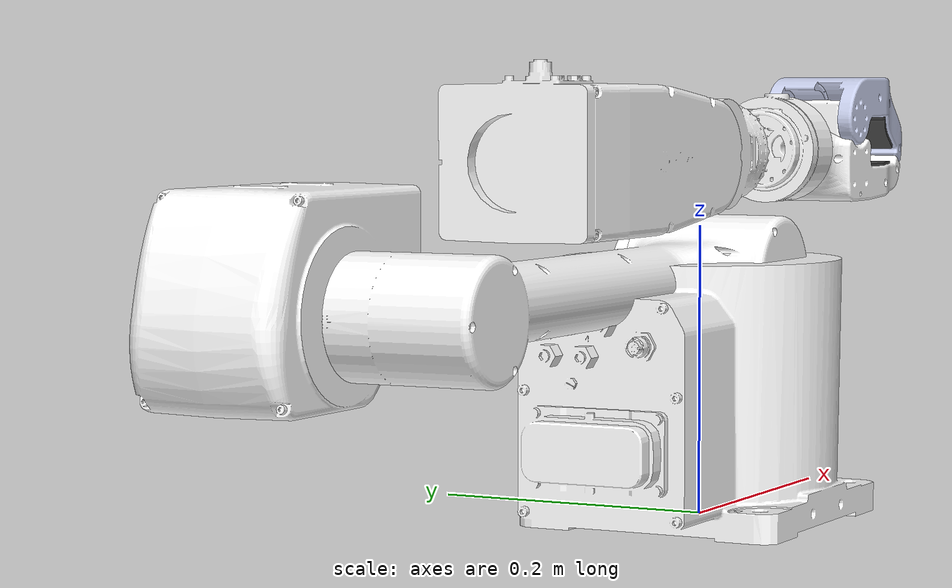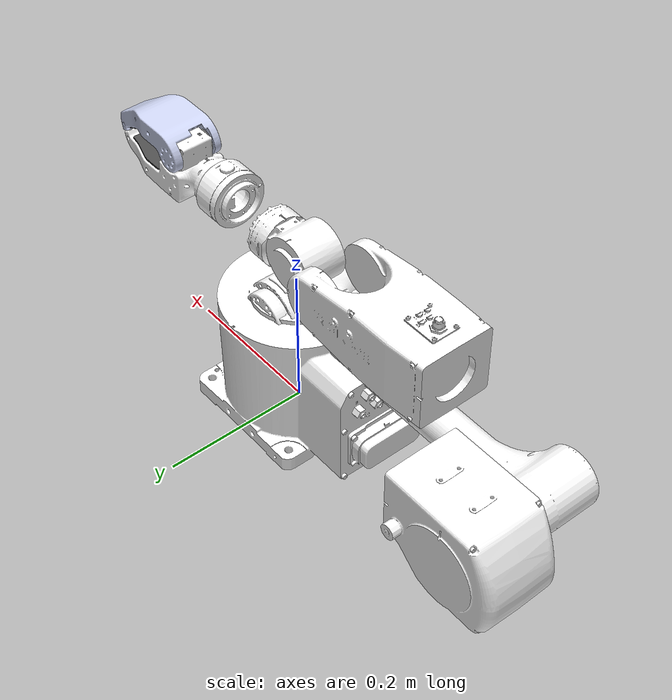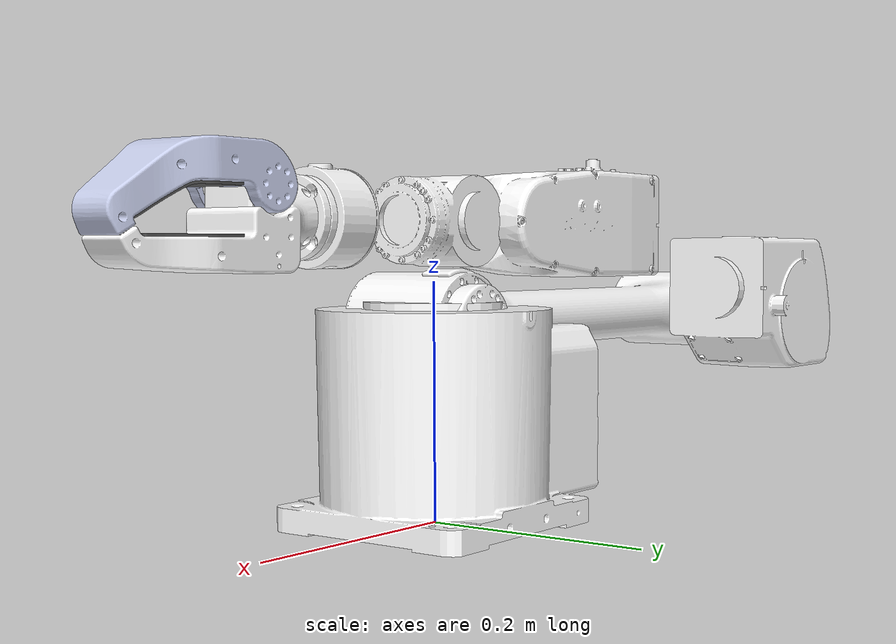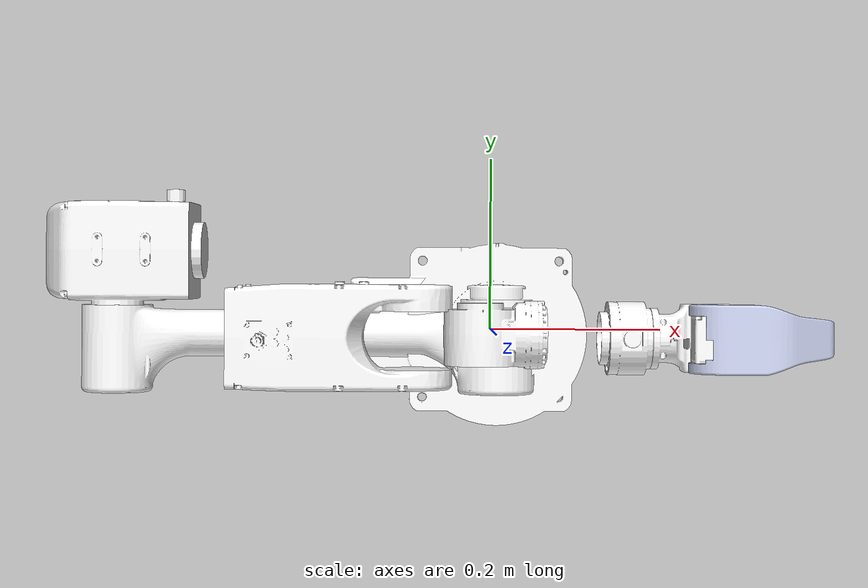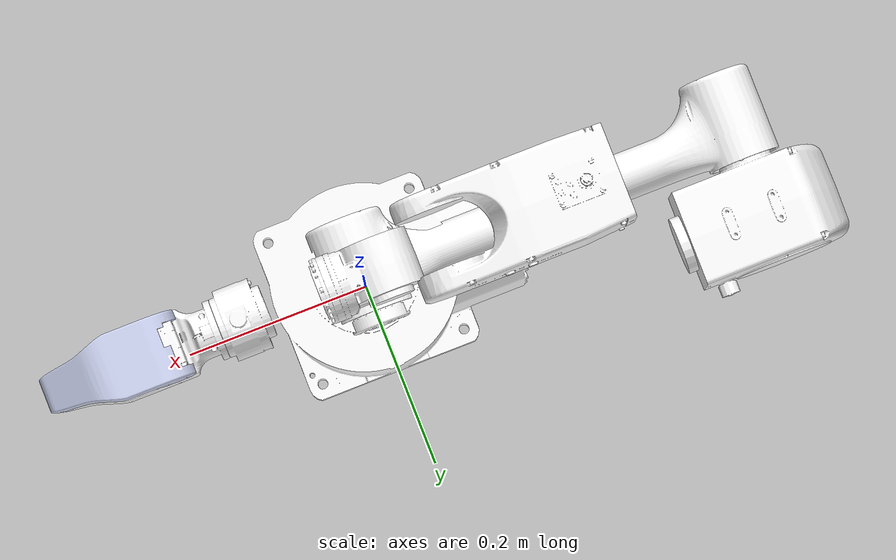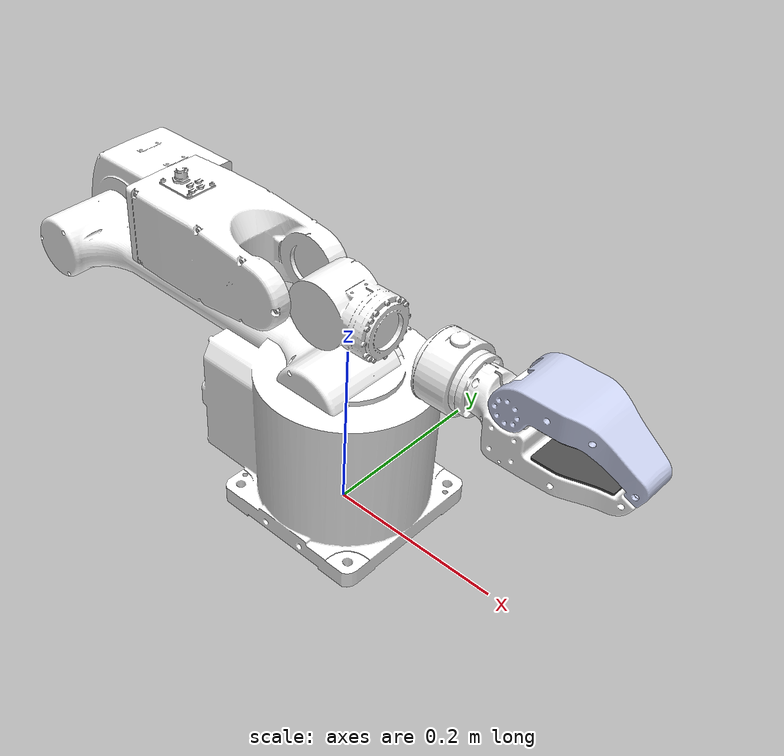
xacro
<?xml version="1.0"?>

<robot xmlns:xacro="http://www.ros.org/wiki/xacro" name="qa01" >

  <xacro:arg name="debug" default="false" />

  <xacro:include filename="$(find qa01)/xacro/gazebo.xacro" />
  <xacro:include filename="$(find qa01)/xacro/robot_description.xacro" />
  <xacro:include filename="$(find qa01)/xacro/ros2_control.xacro" />

  <xacro:qa01_ros2_control/>
  <xacro:qa01_description debug="$(arg debug)"/>

</robot>

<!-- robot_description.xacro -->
<robot xmlns:xacro="http://www.ros.org/wiki/xacro">
  <xacro:macro name="qa01_description" params="debug">

    <link name="world" />
    <joint name="world_fixed" type="fixed">
      <parent link="world" />
      <child link="base_link" />
    </joint>

  <link
    name="base_link">
    <inertial>
      <origin
        xyz="0.00039738 -0.00005889 0.06018277"
        rpy="0 0 0" />
      <mass
        value="1.235" />
      <inertia
        ixx="0.00151953"
        ixy="0.00000173"
        ixz="-0.00001964"
        iyy="0.00146074"
        iyz="0.00000259"
        izz="0.00110167" />
    </inertial>
    <visual>
      <origin
        xyz="0 0 0"
        rpy="0 0 0" />
      <geometry>
        <mesh
          filename="/home/wl/Documents/simulation_all_ros2/src/robot_description/qa01/meshes/base_link.STL" />
      </geometry>
      <material
        name="">
        <color
          rgba="1 1 1 1" />
      </material>
    </visual>
    <collision>
      <origin
        xyz="0 0 0"
        rpy="0 0 0" />
      <geometry>
        <mesh
          filename="/home/wl/Documents/simulation_all_ros2/src/robot_description/qa01/meshes/base_link.STL" />
      </geometry>
    </collision>
  </link>

  <joint
    name="Joint1"
    type="revolute">
    <origin
      xyz="0 0 0.107"
      rpy="0 0 0" />
    <parent
      link="base_link" />
    <child
      link="Link1" />
    <axis
      xyz="0 0 1" />
    <limit
      lower="-2.2"
      upper="3.0"
      effort="20"
      velocity="1.57" />
  </joint>

  <link
    name="Link1">
    <inertial>
      <origin
        xyz="0.00002637 0.03034462 0.02957486"
        rpy="0 0 0" />
      <mass
        value="0.256" />
      <inertia
        ixx="0.00034307"
        ixy="-0.00000043"
        ixz="-0.00000019"
        iyy="0.00031904"
        iyz="0.00009123"
        izz="0.00031265" />
    </inertial>
    <visual>
      <origin
        xyz="0 0 0"
        rpy="0 0 0" />
      <geometry>
        <mesh
          filename="/home/wl/Documents/simulation_all_ros2/src/robot_description/qa01/meshes/Link1.STL" />
      </geometry>
      <material
        name="">
        <color
          rgba="1 1 1 1" />
      </material>
    </visual>
    <collision>
      <origin
        xyz="0 0 0"
        rpy="0 0 0" />
      <geometry>
        <mesh
          filename="/home/wl/Documents/simulation_all_ros2/src/robot_description/qa01/meshes/Link1.STL" />
      </geometry>
    </collision>
  </link>

  <joint
    name="Joint2"
    type="revolute">
    <origin
      xyz="0 0.041 0.058"
      rpy="0 0 0" />
    <parent
      link="Link1" />
    <child
      link="Link2" />
    <axis
      xyz="0 1 0" />
    <limit
      lower="0"
      upper="3.0"
      effort="20"
      velocity="1.57" />
  </joint>

  <link
    name="Link2">
    <inertial>
      <origin
        xyz="-0.18055472 -0.04510178 0.00003829"
        rpy="0 0 0" />
      <mass
        value="2.968" />
      <inertia
        ixx="0.00266709"
        ixy="0.00180103"
        ixz="0.00003559"
        iyy="0.1109826"
        iyz="0.0000056"
        izz="0.11142386" />
    </inertial>
    <visual>
      <origin
        xyz="0 0 0"
        rpy="0 0 0" />
      <geometry>
        <mesh
          filename="/home/wl/Documents/simulation_all_ros2/src/robot_description/qa01/meshes/Link2.STL" />
      </geometry>
      <material
        name="">
        <color
          rgba="1 1 1 1" />
      </material>
    </visual>
    <collision>
      <origin
        xyz="0 0 0"
        rpy="0 0 0" />
      <geometry>
        <mesh
          filename="/home/wl/Documents/simulation_all_ros2/src/robot_description/qa01/meshes/Link2.STL" />
      </geometry>
    </collision>
  </link>

  <joint
    name="Joint3"
    type="revolute">
    <origin
      xyz="-0.41 -0.0095 0"
      rpy="0 0 0" />
    <parent
      link="Link2" />
    <child
      link="Link3" />
    <axis
      xyz="0 1 0" />
    <limit
      lower="-3.0"
      upper="0"
      effort="20"
      velocity="1.57" />
  </joint>

  <link
    name="Link3">
    <inertial>
      <origin
        xyz="0.08202737 -0.02788467 0.07516671"
        rpy="0 0 0" />
      <mass
        value="1.356" />
      <inertia
        ixx="0.00204921"
        ixy="-0.00040930"
        ixz="0.00107577"
        iyy="0.00395056"
        iyz="-0.00037046"
        izz="0.00335315" />
    </inertial>
    <visual>
      <origin
        xyz="0 0 0"
        rpy="0 0 0" />
      <geometry>
        <mesh
          filename="/home/wl/Documents/simulation_all_ros2/src/robot_description/qa01/meshes/Link3.STL" />
      </geometry>
      <material
        name="">
        <color
          rgba="1 1 1 1" />
      </material>
    </visual>
    <collision>
      <origin
        xyz="0 0 0"
        rpy="0 0 0" />
      <geometry>
        <mesh
          filename="/home/wl/Documents/simulation_all_ros2/src/robot_description/qa01/meshes/Link3.STL" />
      </geometry>
    </collision>
  </link>

  <joint
    name="Joint4"
    type="revolute">
    <origin
      xyz="0.1415 -0.0315 0.085"
      rpy="0 0 0" />
    <parent
      link="Link3" />
    <child
      link="Link4" />
    <axis
      xyz="1 0 0" />
    <limit
      lower="-2.2"
      upper="3.0"
      effort="20"
      velocity="1.57" />
  </joint>

  <link
    name="Link4">
    <inertial>
      <origin
        xyz="0.20592565 -0.00384981 0.00001806"
        rpy="0 0 0" />
      <mass
        value="1.462" />
      <inertia
        ixx="0.0011947"
        ixy="-0.00025098"
        ixz="0.00000122"
        iyy="0.01082010"
        iyz="-0.00000088"
        izz="0.01098098" />
    </inertial>
    <visual>
      <origin
        xyz="0 0 0"
        rpy="0 0 0" />
      <geometry>
        <mesh
          filename="/home/wl/Documents/simulation_all_ros2/src/robot_description/qa01/meshes/Link4.STL" />
      </geometry>
      <material
        name="">
        <color
          rgba="1 1 1 1" />
      </material>
    </visual>
    <collision>
      <origin
        xyz="0 0 0"
        rpy="0 0 0" />
      <geometry>
        <mesh
          filename="/home/wl/Documents/simulation_all_ros2/src/robot_description/qa01/meshes/Link4.STL" />
      </geometry>
    </collision>
  </link>

  <joint
    name="Joint5"
    type="revolute">
    <origin
      xyz="0.2495 0.0355 0"
      rpy="0 0 0" />
    <parent
      link="Link4" />
    <child
      link="Link5" />
    <axis
      xyz="0 1 0" />
    <limit
      lower="-1.55"
      upper="1.55"
      effort="20"
      velocity="1.57" />
  </joint>

  <link
    name="Link5">
    <inertial>
      <origin
        xyz="0.08093796 -0.03060322 -0.00005070"
        rpy="0 0 0" />
      <mass
        value="1.245" />
      <inertia
        ixx="0.00113585"
        ixy="-0.00043658"
        ixz="0.00000344"
        iyy="0.00195759"
        iyz="-0.00000175"
        izz="0.00212406" />
    </inertial>
    <visual>
      <origin
        xyz="0 0 0"
        rpy="0 0 0" />
      <geometry>
        <mesh
          filename="/home/wl/Documents/simulation_all_ros2/src/robot_description/qa01/meshes/Link5.STL" />
      </geometry>
      <material
        name="">
        <color
          rgba="1 1 1 1" />
      </material>
    </visual>
    <collision>
      <origin
        xyz="0 0 0"
        rpy="0 0 0" />
      <geometry>
        <mesh
          filename="/home/wl/Documents/simulation_all_ros2/src/robot_description/qa01/meshes/Link5.STL" />
      </geometry>
    </collision>
  </link>

  <joint
    name="Joint6"
    type="revolute">
    <origin
      xyz="0.1315 -0.0355 0"
      rpy="0 0 0" />
    <parent
      link="Link5" />
    <child
      link="Link6" />
    <axis
      xyz="1 0 0" />
    <limit
      lower="-2.2"
      upper="3.0"
      effort="20"
      velocity="1.57" />
  </joint>

  <link
    name="Link6">
    <inertial>
      <origin
        xyz="0.02024823 0.00000565 -0.00029493"
        rpy="0 0 0" />
      <mass
        value="0.301" />
      <inertia
        ixx="0.00027430"
        ixy="-0.00000002"
        ixz="-0.00000022"
        iyy="0.00019299"
        iyz="0.00000002"
        izz="0.00020068" />
    </inertial>
    <visual>
      <origin
        xyz="0 0 0"
        rpy="0 0 0" />
      <geometry>
        <mesh
          filename="/home/wl/Documents/simulation_all_ros2/src/robot_description/qa01/meshes/Link6.STL" />
      </geometry>
      <material
        name="">
        <color
          rgba="1 1 1 1" />
      </material>
    </visual>
    <collision>
      <origin
        xyz="0 0 0"
        rpy="0 0 0" />
      <geometry>
        <mesh
          filename="/home/wl/Documents/simulation_all_ros2/src/robot_description/qa01/meshes/Link6.STL" />
      </geometry>
    </collision>
  </link>

  <joint
    name="Joint7"
    type="fixed">
    <origin
      xyz="0.044 0 0"
      rpy="0 0 0" />
    <parent
      link="Link6" />
    <child
      link="Link7" />
  </joint>

  <link
    name="Link7">
    <inertial>
      <origin
        xyz="0.0575 0.0008 -0.0097"
        rpy="0 0 0" />
      <mass
        value="0.304" />
      <inertia
        ixx="0.00020389"
        ixy="-0.00000088"
        ixz="-0.00012161"
        iyy="0.00075402"
        iyz="0.00000391"
        izz="0.00074432" />
    </inertial>
    <visual>
      <origin
        xyz="0 0 0"
        rpy="0 0 0" />
      <geometry>
        <mesh
          filename="/home/wl/Documents/simulation_all_ros2/src/robot_description/qa01/meshes/Link7.STL" />
      </geometry>
      <material
        name="">
        <color
          rgba="1 1 1 1" />
      </material>
    </visual>
    <collision>
      <origin
        xyz="0 0 0"
        rpy="0 0 0" />
      <geometry>
        <mesh
          filename="/home/wl/Documents/simulation_all_ros2/src/robot_description/qa01/meshes/Link7.STL" />
      </geometry>
    </collision>
  </link>

  <joint
    name="GripperUpJoint"
    type="revolute">
    <origin
      xyz="0.057 0.0002 0.022"
      rpy="0 0 0" />
    <parent
      link="Link7" />
    <child
      link="Link8" />
    <axis
      xyz="0 1 0" />
    <limit
      lower="-1.57"
      upper="0"
      effort="20"
      velocity="1.57" />
  </joint>

  <link
    name="Link8">
    <inertial>
      <origin
        xyz="0.0537 -0.0004 0.0075"
        rpy="0 0 0" />
      <mass
        value="0.134" />
      <inertia
        ixx="0.00009441"
        ixy="-0.00000004"
        ixz="-0.00004142"
        iyy="0.0002519"
        iyz="0.00000003"
        izz="0.00028101" />
    </inertial>
    <visual>
      <origin
        xyz="0 0 0"
        rpy="0 0 0" />
      <geometry>
        <mesh
          filename="/home/wl/Documents/simulation_all_ros2/src/robot_description/qa01/meshes/Link8.STL" />
      </geometry>
      <material
        name="">
        <color
          rgba="0.79608 0.82353 0.93725 1" />
      </material>
    </visual>
    <collision>
      <origin
        xyz="0 0 0"
        rpy="0 0 0" />
      <geometry>
        <mesh
          filename="/home/wl/Documents/simulation_all_ros2/src/robot_description/qa01/meshes/Link8.STL" />
      </geometry>
    </collision>
  </link>

  <joint
    name="FingerTipJoint"
    type="fixed">
    <origin
      xyz="0.046751 0 -0.002"
      rpy="0 0 0" />
    <parent
      link="Link8" />
    <child
      link="FingerTip" />
    <axis
      xyz="0 0 0" />
  </joint>

  <link
    name="FingerTip">
    <inertial>
      <origin
        xyz="0.020217 -1.2367E-08 -0.0028442"
        rpy="0 0 0" />
      <mass
        value="0.023" />
      <inertia
        ixx="0.00000717"
        ixy="0.0"
        ixz="0.00000344"
        iyy="0.00001425"
        iyz="0.0"
        izz="0.00001900" />
    </inertial>
    <visual>
      <origin
        xyz="0 0 0"
        rpy="0 0 0" />
      <geometry>
        <mesh
          filename="/home/wl/Documents/simulation_all_ros2/src/robot_description/qa01/meshes/FingerTip.STL" />
      </geometry>
      <material
        name="">
        <color
          rgba="0.29804 0.29804 0.29804 1" />
      </material>
    </visual>
    <collision>
      <origin
        xyz="0 0 0"
        rpy="0 0 0" />
      <geometry>
        <mesh
          filename="/home/wl/Documents/simulation_all_ros2/src/robot_description/qa01/meshes/FingerTip.STL" />
      </geometry>
    </collision>
  </link>

  <joint
    name="HandTipJoint"
    type="fixed">
    <origin
      xyz="0.10375 0.00020001 -0.013"
      rpy="0 0 0" />
    <parent
      link="Link7" />
    <child
      link="HandTip" />
    <axis
      xyz="0 0 0" />
  </joint>

  <link
    name="HandTip">
    <inertial>
      <origin
        xyz="0.015597 -0.00020003 -0.002"
        rpy="0 0 0" />
      <mass
        value="0.0207" />
      <inertia
        ixx="0.00000567"
        ixy="0.0"
        ixz="0.0"
        iyy="0.0000091"
        iyz="0.0"
        izz="0.00001493" />
    </inertial>
    <visual>
      <origin
        xyz="0 0 0"
        rpy="0 0 0" />
      <geometry>
        <mesh
          filename="/home/wl/Documents/simulation_all_ros2/src/robot_description/qa01/meshes/HandTip.STL" />
      </geometry>
      <material
        name="">
        <color
          rgba="0.29804 0.29804 0.29804 1" />
      </material>
    </visual>
    <collision>
      <origin
        xyz="0 0 0"
        rpy="0 0 0" />
      <geometry>
        <mesh
          filename="/home/wl/Documents/simulation_all_ros2/src/robot_description/qa01/meshes/HandTip.STL" />
      </geometry>
    </collision>
  </link>

  </xacro:macro>
</robot>
